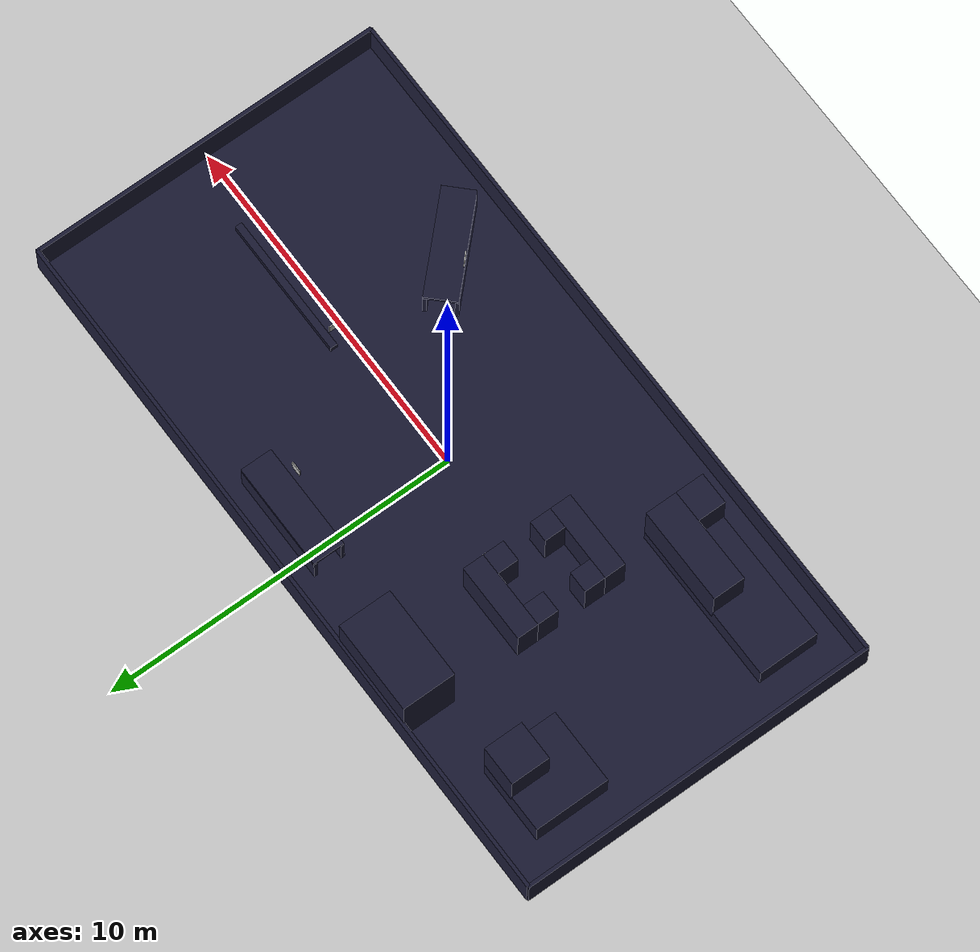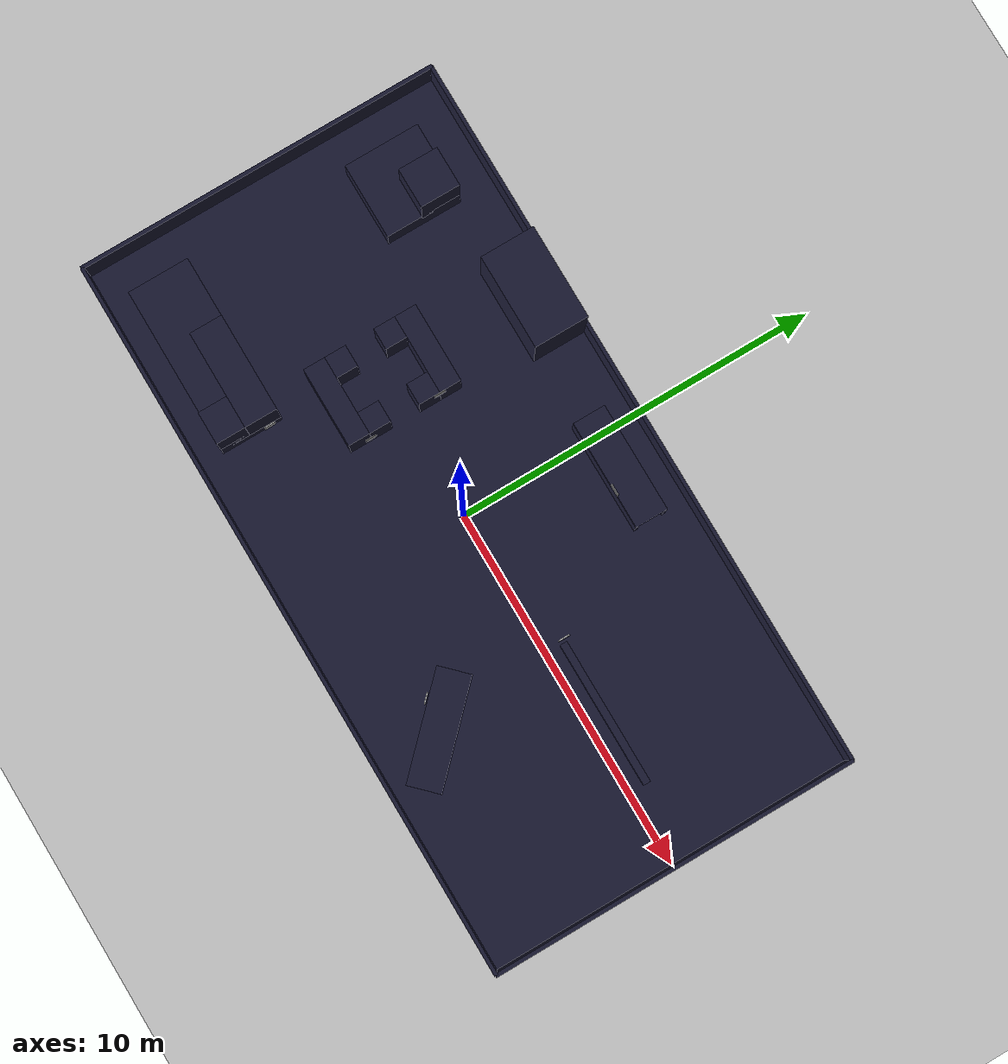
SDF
<sdf version="1.5">
 <world name="default">
  <physics type="ode"><ode><solver><iters>150</iters></solver></ode></physics>
  <include><uri>model://sun</uri></include>
  <include><uri>model://ground_plane</uri></include>
  <model name="aruco1">
   <pose>-2.7 3.75 1 3.1415926535897932384626433832795 0 0</pose>
   <include><name>aruco1</name><uri>model://aruco1</uri></include>
  </model>
  <model name="aruco2">
   <pose>-2.8 1 1 3.1415926535 0 0</pose>
   <include><name>aruco2</name><uri>model://aruco2</uri></include>
  </model>
  <model name="aruco3">
   <pose>-2.8 -1 1 3.1415926535 0 0</pose>
   <include><name>aruco3</name><uri>model://aruco3</uri></include>
  </model>
  <model name="aruco4">
   <pose>-4.35 -3 1 3.1415926535897932384626433832795 0 0</pose>
   <include><name>aruco4</name><uri>model://aruco4</uri></include>
  </model>
  <model name="aruco5">
   <pose>3.95 0.5 1 0 0 0</pose>
   <include><name>aruco5</name><uri>model://aruco5</uri></include>
  </model>
  <model name="aruco6">
   <pose>1.5 3.4 1 0 0 1.5707963267948966192313216916398</pose>
   <include><name>aruco6</name><uri>model://aruco6</uri></include>
  </model>
  <model name="aruco7">
   <pose>3.5 -3.1 1 0 0 0.8</pose>
   <include><name>aruco7</name><uri>model://aruco7</uri></include>
  </model>
  <model name="arena">
   <static>true</static>
   <link name="link">
    <inertial>
     <mass>0.0</mass>
     <inertia><ixx>0.0</ixx><ixy>0.0</ixy><ixz>0.0</ixz><iyy>0.0</iyy><iyz>0.0</iyz><izz>0.0</izz></inertia>
    </inertial>
    <collision name="collision"><geometry><box><size>20.05 10.05 0.005</size></box></geometry></collision>
    <visual name="visual">
     <geometry><box><size>20.05 10.05 0.005</size></box></geometry>
     <material>
      <ambient>0.0 0.9 0.0 1</ambient>
      <diffuse>0.1 0.1 0.2 1</diffuse>
      <specular>0 0 0 0</specular>
      <emissive>0 0 0 1</emissive>
     </material>
    </visual>
   </link>
   <link name="link2">
    <pose>0 0 0.005 0 0 0</pose>
    <inertial>
     <mass>0.0</mass>
     <inertia><ixx>0.0</ixx><ixy>0.0</ixy><ixz>0.0</ixz><iyy>0.0</iyy><iyz>0.0</iyz><izz>0.0</izz></inertia>
    </inertial>
    <collision name="collision"><geometry><box><size>20 10 0.005</size></box></geometry></collision>
    <visual name="visual">
     <geometry><box><size>20 10 0.005</size></box></geometry>
     <material>
      <ambient>0.9 0.9 0.9 1</ambient>
      <diffuse>0.1 0.1 0.2 1</diffuse>
      <specular>0 0 0 0</specular>
      <emissive>0 0 0 1</emissive>
     </material>
    </visual>
   </link>
  </model>
  <model name="wall1">
   <pose>0 5.025 0.5 0 0 0</pose>
   <static>true</static>
   <link name="link">
    <inertial>
     <mass>1000.0</mass>
     <inertia><ixx>0.0</ixx><ixy>0.0</ixy><ixz>0.0</ixz><iyy>0.0</iyy><iyz>0.0</iyz><izz>0.0</izz></inertia>
    </inertial>
    <collision name="collision"><geometry><box><size>20.1 0.1 1</size></box></geometry></collision>
    <visual name="visual">
     <geometry><box><size>20.1 0.1 1</size></box></geometry>
     <material>
      <ambient>0.9 0.3 0.9 1</ambient>
      <diffuse>0.1 0.1 0.2 1</diffuse>
      <specular>0 0 0 0</specular>
      <emissive>0 0 0 1</emissive>
     </material>
    </visual>
   </link>
  </model>
  <model name="wall2">
   <pose>0 -5.025 0.5 0 0 0</pose>
   <static>true</static>
   <link name="link">
    <inertial>
     <mass>1000.0</mass>
     <inertia><ixx>0.0</ixx><ixy>0.0</ixy><ixz>0.0</ixz><iyy>0.0</iyy><iyz>0.0</iyz><izz>0.0</izz></inertia>
    </inertial>
    <collision name="collision"><geometry><box><size>20.1 0.1 1</size></box></geometry></collision>
    <visual name="visual">
     <geometry><box><size>20.1 0.1 1</size></box></geometry>
     <material>
      <ambient>0.9 0.3 0.9 1</ambient>
      <diffuse>0.1 0.1 0.2 1</diffuse>
      <specular>0 0 0 0</specular>
      <emissive>0 0 0 1</emissive>
     </material>
    </visual>
   </link>
  </model>
  <model name="wall3">
   <pose>-10.05 0 0.5 0 0 0</pose>
   <static>true</static>
   <link name="link">
    <inertial>
     <mass>1000.0</mass>
     <inertia><ixx>0.0</ixx><ixy>0.0</ixy><ixz>0.0</ixz><iyy>0.0</iyy><iyz>0.0</iyz><izz>0.0</izz></inertia>
    </inertial>
    <collision name="collision"><geometry><box><size>0.1 10.1 1</size></box></geometry></collision>
    <visual name="visual">
     <geometry><box><size>0.1 10.1 1</size></box></geometry>
     <material>
      <ambient>0.9 0.3 0.9 1</ambient>
      <diffuse>0.1 0.1 0.2 1</diffuse>
      <specular>0 0 0 0</specular>
      <emissive>0 0 0 1</emissive>
     </material>
    </visual>
   </link>
  </model>
  <model name="wall4">
   <pose>10.05 0 0.5 0 0 0</pose>
   <static>true</static>
   <link name="link">
    <inertial>
     <mass>1000.0</mass>
     <inertia><ixx>0.0</ixx><ixy>0.0</ixy><ixz>0.0</ixz><iyy>0.0</iyy><iyz>0.0</iyz><izz>0.0</izz></inertia>
    </inertial>
    <collision name="collision"><geometry><box><size>0.1 10.1 1</size></box></geometry></collision>
    <visual name="visual">
     <geometry><box><size>0.1 10.1 1</size></box></geometry>
     <material>
      <ambient>0.9 0.3 0.9 1</ambient>
      <diffuse>0.1 0.1 0.2 1</diffuse>
      <specular>0 0 0 0</specular>
      <emissive>0 0 0 1</emissive>
     </material>
    </visual>
   </link>
  </model>
  <model name="building_06">
   <pose>-7.95 2.95 0.40 0 0 0</pose>
   <static>true</static>
   <link name="link">
    <inertial>
     <mass>1000.0</mass>
     <inertia><ixx>0.0</ixx><ixy>0.0</ixy><ixz>0.0</ixz><iyy>0.0</iyy><iyz>0.0</iyz><izz>0.0</izz></inertia>
    </inertial>
    <collision name="collision"><geometry><box><size>2.1 2.1 0.80</size></box></geometry></collision>
    <visual name="visual">
     <geometry><box><size>2.1 2.1 0.80</size></box></geometry>
     <material>
      <ambient>0.3 0.0 0.7 1</ambient>
      <diffuse>0.1 0.1 0.2 1</diffuse>
      <specular>0 0 0 0</specular>
      <emissive>0 0 0 1</emissive>
     </material>
    </visual>
   </link>
   <link name="link2">
    <pose>0.5 0.5 0.8 0 0 0</pose>
    <inertial>
     <mass>1000.0</mass>
     <inertia><ixx>0.0</ixx><ixy>0.0</ixy><ixz>0.0</ixz><iyy>0.0</iyy><iyz>0.0</iyz><izz>0.0</izz></inertia>
    </inertial>
    <collision name="collision"><geometry><box><size>1.10 1.10 1.2</size></box></geometry></collision>
    <visual name="visual">
     <geometry><box><size>1.10 1.10 1.2</size></box></geometry>
     <material>
      <ambient>0.3 0.0 0.7 1</ambient>
      <diffuse>0.1 0.1 0.2 1</diffuse>
      <specular>0 0 0 0</specular>
      <emissive>0 0 0 1</emissive>
     </material>
    </visual>
   </link>
  </model>
  <model name="building_09">
   <pose>-3.75 4.25 1.00 0 0 0</pose>
   <static>true</static>
   <link name="link">
    <inertial>
     <mass>1000.0</mass>
     <inertia><ixx>0.0</ixx><ixy>0.0</ixy><ixz>0.0</ixz><iyy>0.0</iyy><iyz>0.0</iyz><izz>0.0</izz></inertia>
    </inertial>
    <collision name="collision"><geometry><box><size>2.6 1.5 2.0</size></box></geometry></collision>
    <visual name="visual">
     <geometry><box><size>2.6 1.5 2.0</size></box></geometry>
     <material>
      <ambient>0.5 0.5 0.1 1</ambient>
      <diffuse>0.1 0.1 0.2 1</diffuse>
      <specular>0 0 0 0</specular>
      <emissive>0 0 0 1</emissive>
     </material>
    </visual>
   </link>
  </model>
  <model name="building_03a">
   <pose>-3.9 1.3 0.60 0 0 0</pose>
   <static>true</static>
   <link name="link">
    <inertial>
     <mass>1000.0</mass>
     <inertia><ixx>0.0</ixx><ixy>0.0</ixy><ixz>0.0</ixz><iyy>0.0</iyy><iyz>0.0</iyz><izz>0.0</izz></inertia>
    </inertial>
    <collision name="collision"><geometry><box><size>2.20 0.6 1.20</size></box></geometry></collision>
    <visual name="visual">
     <geometry><box><size>2.20 0.6 1.20</size></box></geometry>
     <material>
      <ambient>0.3 0.0 0.7 1</ambient>
      <diffuse>0.1 0.1 0.2 1</diffuse>
      <specular>0 0 0 0</specular>
      <emissive>0 0 0 1</emissive>
     </material>
    </visual>
   </link>
   <link name="link2">
    <pose>0.8 -0.6 0 0 0 0</pose>
    <inertial>
     <mass>1000.0</mass>
     <inertia><ixx>0.0</ixx><ixy>0.0</ixy><ixz>0.0</ixz><iyy>0.0</iyy><iyz>0.0</iyz><izz>0.0</izz></inertia>
    </inertial>
    <collision name="collision"><geometry><box><size>.6 0.6 1.20</size></box></geometry></collision>
    <visual name="visual">
     <geometry><box><size>.6 0.6 1.20</size></box></geometry>
     <material>
      <ambient>0.3 0.0 0.7 1</ambient>
      <diffuse>0.1 0.1 0.2 1</diffuse>
      <specular>0 0 0 0</specular>
      <emissive>0 0 0 1</emissive>
     </material>
    </visual>
   </link>
   <link name="link3">
    <pose>-0.8 -0.6 0 0 0 0</pose>
    <inertial>
     <mass>1000.0</mass>
     <inertia><ixx>0.0</ixx><ixy>0.0</ixy><ixz>0.0</ixz><iyy>0.0</iyy><iyz>0.0</iyz><izz>0.0</izz></inertia>
    </inertial>
    <collision name="collision"><geometry><box><size>.6 0.6 1.20</size></box></geometry></collision>
    <visual name="visual">
     <geometry><box><size>.6 0.6 1.20</size></box></geometry>
     <material>
      <ambient>0.3 0.0 0.7 1</ambient>
      <diffuse>0.1 0.1 0.2 1</diffuse>
      <specular>0 0 0 0</specular>
      <emissive>0 0 0 1</emissive>
     </material>
    </visual>
   </link>
  </model>
  <model name="building_03b">
   <pose>-3.9 -1.3 0.60 0 0 0</pose>
   <static>true</static>
   <link name="link">
    <inertial>
     <mass>1000.0</mass>
     <inertia><ixx>0.0</ixx><ixy>0.0</ixy><ixz>0.0</ixz><iyy>0.0</iyy><iyz>0.0</iyz><izz>0.0</izz></inertia>
    </inertial>
    <collision name="collision"><geometry><box><size>2.20 0.6 1.20</size></box></geometry></collision>
    <visual name="visual">
     <geometry><box><size>2.20 0.6 1.20</size></box></geometry>
     <material>
      <ambient>0.3 0.0 0.7 1</ambient>
      <diffuse>0.1 0.1 0.2 1</diffuse>
      <specular>0 0 0 0</specular>
      <emissive>0 0 0 1</emissive>
     </material>
    </visual>
   </link>
   <link name="link2">
    <pose>0.8 0.6 0 0 0 0</pose>
    <inertial>
     <mass>1000.0</mass>
     <inertia><ixx>0.0</ixx><ixy>0.0</ixy><ixz>0.0</ixz><iyy>0.0</iyy><iyz>0.0</iyz><izz>0.0</izz></inertia>
    </inertial>
    <collision name="collision"><geometry><box><size>.6 0.6 1.20</size></box></geometry></collision>
    <visual name="visual">
     <geometry><box><size>.6 0.6 1.20</size></box></geometry>
     <material>
      <ambient>0.3 0.0 0.7 1</ambient>
      <diffuse>0.1 0.1 0.2 1</diffuse>
      <specular>0 0 0 0</specular>
      <emissive>0 0 0 1</emissive>
     </material>
    </visual>
   </link>
   <link name="link3">
    <pose>-0.8 0.6 0 0 0 0</pose>
    <inertial>
     <mass>1000.0</mass>
     <inertia><ixx>0.0</ixx><ixy>0.0</ixy><ixz>0.0</ixz><iyy>0.0</iyy><iyz>0.0</iyz><izz>0.0</izz></inertia>
    </inertial>
    <collision name="collision"><geometry><box><size>.6 0.6 1.20</size></box></geometry></collision>
    <visual name="visual">
     <geometry><box><size>.6 0.6 1.20</size></box></geometry>
     <material>
      <ambient>0.3 0.0 0.7 1</ambient>
      <diffuse>0.1 0.1 0.2 1</diffuse>
      <specular>0 0 0 0</specular>
      <emissive>0 0 0 1</emissive>
     </material>
    </visual>
   </link>
  </model>
  <model name="building_10">
   <pose>-6.7 -3.5 0.35 0 0 0</pose>
   <static>true</static>
   <link name="link">
    <inertial>
     <mass>1000.0</mass>
     <inertia><ixx>0.0</ixx><ixy>0.0</ixy><ixz>0.0</ixz><iyy>0.0</iyy><iyz>0.0</iyz><izz>0.0</izz></inertia>
    </inertial>
    <collision name="collision"><geometry><box><size>4.6 1.7 0.70</size></box></geometry></collision>
    <visual name="visual">
     <geometry><box><size>4.6 1.7 0.70</size></box></geometry>
     <material>
      <ambient>0.8 0.8 0.3 1</ambient>
      <diffuse>0.1 0.1 0.2 1</diffuse>
      <specular>0 0 0 0</specular>
      <emissive>0 0 0 1</emissive>
     </material>
    </visual>
   </link>
   <link name="link2">
    <pose>0.95 0.4 0.7 0 0 0</pose>
    <inertial>
     <mass>1000.0</mass>
     <inertia><ixx>0.0</ixx><ixy>0.0</ixy><ixz>0.0</ixz><iyy>0.0</iyy><iyz>0.0</iyz><izz>0.0</izz></inertia>
    </inertial>
    <collision name="collision"><geometry><box><size>2.70 0.90 1.3</size></box></geometry></collision>
    <visual name="visual">
     <geometry><box><size>2.70 0.90 1.3</size></box></geometry>
     <material>
      <ambient>0.8 0.8 0.3 1</ambient>
      <diffuse>0.1 0.1 0.2 1</diffuse>
      <specular>0 0 0 0</specular>
      <emissive>0 0 0 1</emissive>
     </material>
    </visual>
   </link>
   <link name="link3">
    <pose>1.85 -0.45 0.7 0 0 0</pose>
    <inertial>
     <mass>1000.0</mass>
     <inertia><ixx>0.0</ixx><ixy>0.0</ixy><ixz>0.0</ixz><iyy>0.0</iyy><iyz>0.0</iyz><izz>0.0</izz></inertia>
    </inertial>
    <collision name="collision"><geometry><box><size>0.90 0.80 1.3</size></box></geometry></collision>
    <visual name="visual">
     <geometry><box><size>0.90 0.80 1.3</size></box></geometry>
     <material>
      <ambient>0.8 0.8 0.3 1</ambient>
      <diffuse>0.1 0.1 0.2 1</diffuse>
      <specular>0 0 0 0</specular>
      <emissive>0 0 0 1</emissive>
     </material>
    </visual>
   </link>
  </model>
  <model name="unknown_obs">
   <pose>6 0.5 0.1 0 0 0</pose>
   <static>true</static>
   <link name="link">
    <inertial>
     <mass>1000.0</mass>
     <inertia><ixx>0.0</ixx><ixy>0.0</ixy><ixz>0.0</ixz><iyy>0.0</iyy><iyz>0.0</iyz><izz>0.0</izz></inertia>
    </inertial>
    <collision name="collision"><geometry><box><size>4 0.2 0.20</size></box></geometry></collision>
    <visual name="visual">
     <geometry><box><size>4 0.2 0.20</size></box></geometry>
     <material>
      <ambient>0.5 0.5 0.1 1</ambient>
      <diffuse>0.1 0.1 0.2 1</diffuse>
      <specular>0 0 0 0</specular>
      <emissive>0 0 0 1</emissive>
     </material>
    </visual>
   </link>
  </model>
  <model name="tunnel_00">
   <pose>4 -3.5 0.4 0 0 -0.7853975</pose>
   <static>true</static>
   <link name="link">
    <inertial>
     <mass>1000.0</mass>
     <inertia><ixx>0.0</ixx><ixy>0.0</ixy><ixz>0.0</ixz><iyy>0.0</iyy><iyz>0.0</iyz><izz>0.0</izz></inertia>
    </inertial>
    <collision name="collision"><geometry><box><size>3 0.1 0.80</size></box></geometry></collision>
    <visual name="visual">
     <geometry><box><size>3 0.1 0.80</size></box></geometry>
     <material>
      <ambient>0.9 0.3 0.9 1</ambient>
      <diffuse>0.1 0.1 0.2 1</diffuse>
      <specular>0 0 0 0</specular>
      <emissive>0 0 0 1</emissive>
     </material>
    </visual>
   </link>
   <link name="link1">
    <pose>0 0.8 0 0 0 0</pose>
    <inertial>
     <mass>1000.0</mass>
     <inertia><ixx>0.0</ixx><ixy>0.0</ixy><ixz>0.0</ixz><iyy>0.0</iyy><iyz>0.0</iyz><izz>0.0</izz></inertia>
    </inertial>
    <collision name="collision"><geometry><box><size>3 0.1 0.80</size></box></geometry></collision>
    <visual name="visual">
     <geometry><box><size>3 0.1 0.80</size></box></geometry>
     <material>
      <ambient>0.9 0.3 0.9 1</ambient>
      <diffuse>0.1 0.1 0.2 1</diffuse>
      <specular>0 0 0 0</specular>
      <emissive>0 0 0 1</emissive>
     </material>
    </visual>
   </link>
   <link name="link2">
    <pose>0 0.4 0.45 0 0 0</pose>
    <inertial>
     <mass>1000.0</mass>
     <inertia><ixx>0.0</ixx><ixy>0.0</ixy><ixz>0.0</ixz><iyy>0.0</iyy><iyz>0.0</iyz><izz>0.0</izz></inertia>
    </inertial>
    <collision name="collision"><geometry><box><size>3 0.9 0.10</size></box></geometry></collision>
    <visual name="visual">
     <geometry><box><size>3 0.9 0.10</size></box></geometry>
     <material>
      <ambient>0.9 0.3 0.9 1</ambient>
      <diffuse>0.1 0.1 0.2 1</diffuse>
      <specular>0 0 0 0</specular>
      <emissive>0 0 0 1</emissive>
     </material>
    </visual>
   </link>
  </model>
  <model name="tunnel_01">
   <pose>1 3.5 0.4 0 0 0</pose>
   <static>true</static>
   <link name="link">
    <inertial>
     <mass>1000.0</mass>
     <inertia><ixx>0.0</ixx><ixy>0.0</ixy><ixz>0.0</ixz><iyy>0.0</iyy><iyz>0.0</iyz><izz>0.0</izz></inertia>
    </inertial>
    <collision name="collision"><geometry><box><size>3 0.1 0.80</size></box></geometry></collision>
    <visual name="visual">
     <geometry><box><size>3 0.1 0.80</size></box></geometry>
     <material>
      <ambient>0.9 0.3 0.9 1</ambient>
      <diffuse>0.1 0.1 0.2 1</diffuse>
      <specular>0 0 0 0</specular>
      <emissive>0 0 0 1</emissive>
     </material>
    </visual>
   </link>
   <link name="link1">
    <pose>0 0.8 0 0 0 0</pose>
    <inertial>
     <mass>1000.0</mass>
     <inertia><ixx>0.0</ixx><ixy>0.0</ixy><ixz>0.0</ixz><iyy>0.0</iyy><iyz>0.0</iyz><izz>0.0</izz></inertia>
    </inertial>
    <collision name="collision"><geometry><box><size>3 0.1 0.80</size></box></geometry></collision>
    <visual name="visual">
     <geometry><box><size>3 0.1 0.80</size></box></geometry>
     <material>
      <ambient>0.9 0.3 0.9 1</ambient>
      <diffuse>0.1 0.1 0.2 1</diffuse>
      <specular>0 0 0 0</specular>
      <emissive>0 0 0 1</emissive>
     </material>
    </visual>
   </link>
   <link name="link2">
    <pose>0 0.4 0.45 0 0 0</pose>
    <inertial>
     <mass>1000.0</mass>
     <inertia><ixx>0.0</ixx><ixy>0.0</ixy><ixz>0.0</ixz><iyy>0.0</iyy><iyz>0.0</iyz><izz>0.0</izz></inertia>
    </inertial>
    <collision name="collision"><geometry><box><size>3 0.9 0.10</size></box></geometry></collision>
    <visual name="visual">
     <geometry><box><size>3 0.9 0.10</size></box></geometry>
     <material>
      <ambient>0.9 0.3 0.9 1</ambient>
      <diffuse>0.1 0.1 0.2 1</diffuse>
      <specular>0 0 0 0</specular>
      <emissive>0 0 0 1</emissive>
     </material>
    </visual>
   </link>
  </model>
 </world>
</sdf>

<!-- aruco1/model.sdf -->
<sdf version='1.6'>
  <model name='aruco1'>
    <pose>0 0 0 0 1.56 0</pose>
    <link name='link'>
      <visual name='visual'>
        <geometry>
          <box>
            <size>0.3 0.3 0.03</size>
          </box>
        </geometry>
        <material>
          <script>
            <uri>model://aruco1/materials/scripts</uri>
            <uri>model://aruco1/materials/textures</uri>
           <name>arucoTexture1</name>
          </script>
        </material>
      </visual>
      <collision name='collision'>
        <geometry>
          <box>
            <size>0.3 0.3 0.03</size>
          </box>
        </geometry>
      </collision>
    </link>
  </model>
</sdf>

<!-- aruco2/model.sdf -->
<sdf version='1.6'>
  <model name='aruco2'>
    <pose>0 0 0 0 1.56 0</pose>
    <link name='link'>
      <visual name='visual'>
        <geometry>
          <box>
            <size>0.3 0.3 0.03</size>
          </box>
        </geometry>
        <material>
          <script>
            <uri>model://aruco2/materials/scripts</uri>
            <uri>model://aruco2/materials/textures</uri>
           <name>arucoTexture2</name>
          </script>
        </material>
      </visual>
      <collision name='collision'>
        <geometry>
          <box>
            <size>0.3 0.3 0.03</size>
          </box>
        </geometry>
      </collision>
    </link>
  </model>
</sdf>

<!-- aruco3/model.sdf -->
<sdf version='1.6'>
  <model name='aruco3'>
    <pose>0 0 0.6 0 1.56 0</pose>
    <link name='link'>
      <visual name='visual'>
        <geometry>
          <box>
            <size>0.3 0.3 0.03</size>
          </box>
        </geometry>
        <material>
          <script>
            <uri>model://aruco3/materials/scripts</uri>
            <uri>model://aruco3/materials/textures</uri>
           <name>arucoTexture3</name>
          </script>
        </material>
      </visual>
      <collision name='collision'>
        <geometry>
          <box>
            <size>0.3 0.3 0.03</size>
          </box>
        </geometry>
      </collision>
    </link>
  </model>
</sdf>

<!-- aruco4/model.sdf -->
<sdf version='1.6'>
  <model name='aruco4'>
    <pose>0 0 0.6 0 1.56 0</pose>
    <link name='link'>
      <visual name='visual'>
        <geometry>
          <box>
            <size>0.3 0.3 0.03</size>
          </box>
        </geometry>
        <material>
          <script>
            <uri>model://aruco4/materials/scripts</uri>
            <uri>model://aruco4/materials/textures</uri>
           <name>arucoTexture4</name>
          </script>
        </material>
      </visual>
      <collision name='collision'>
        <geometry>
          <box>
            <size>0.3 0.3 0.03</size>
          </box>
        </geometry>
      </collision>
    </link>
  </model>
</sdf>

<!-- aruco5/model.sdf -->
<sdf version='1.6'>
  <model name='aruco5'>
    <pose>0 0 0.6 0 1.56 0</pose>
    <link name='link'>
      <visual name='visual'>
        <geometry>
          <box>
            <size>0.3 0.3 0.03</size>
          </box>
        </geometry>
        <material>
          <script>
            <uri>model://aruco5/materials/scripts</uri>
            <uri>model://aruco5/materials/textures</uri>
           <name>arucoTexture5</name>
          </script>
        </material>
      </visual>
      <collision name='collision'>
        <geometry>
          <box>
            <size>0.3 0.3 0.03</size>
          </box>
        </geometry>
      </collision>
    </link>
  </model>
</sdf>

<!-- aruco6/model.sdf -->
<sdf version='1.6'>
  <model name='aruco6'>
    <pose>0 0 0.6 0 1.56 0</pose>
    <link name='link'>
      <visual name='visual'>
        <geometry>
          <box>
            <size>0.3 0.3 0.03</size>
          </box>
        </geometry>
        <material>
          <script>
            <uri>model://aruco6/materials/scripts</uri>
            <uri>model://aruco6/materials/textures</uri>
           <name>arucoTexture6</name>
          </script>
        </material>
      </visual>
      <collision name='collision'>
        <geometry>
          <box>
            <size>0.3 0.3 0.03</size>
          </box>
        </geometry>
      </collision>
    </link>
  </model>
</sdf>

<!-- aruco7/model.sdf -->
<sdf version='1.6'>
  <model name='aruco7'>
    <pose>0 0 0.6 0 1.56 0</pose>
    <link name='link'>
      <visual name='visual'>
        <geometry>
          <box>
            <size>0.3 0.3 0.03</size>
          </box>
        </geometry>
        <material>
          <script>
            <uri>model://aruco7/materials/scripts</uri>
            <uri>model://aruco7/materials/textures</uri>
           <name>arucoTexture7</name>
          </script>
        </material>
      </visual>
      <collision name='collision'>
        <geometry>
          <box>
            <size>0.3 0.3 0.03</size>
          </box>
        </geometry>
      </collision>
    </link>
  </model>
</sdf>
